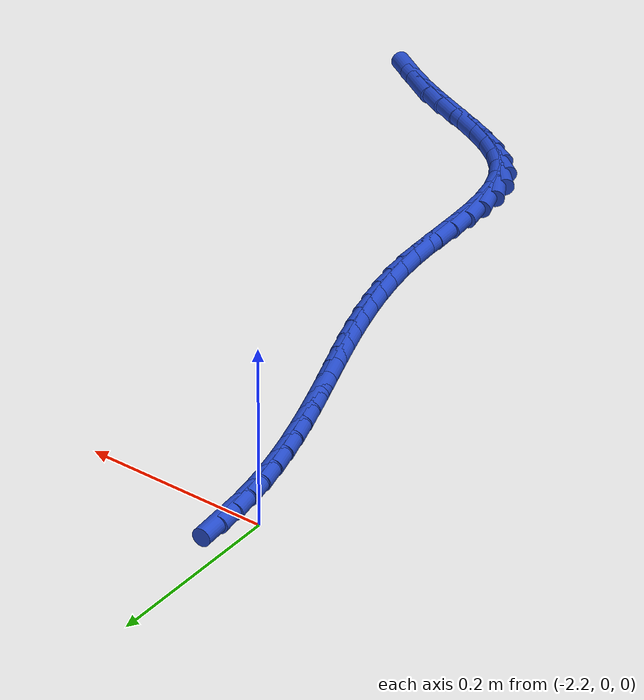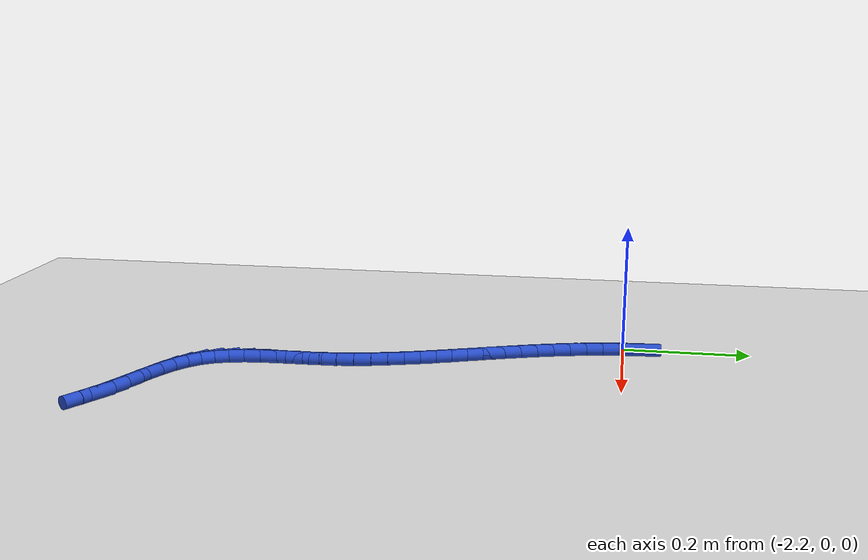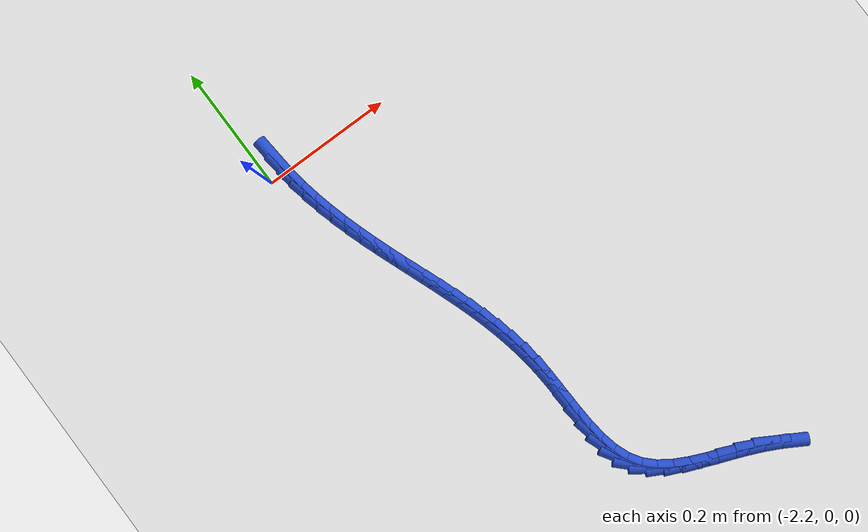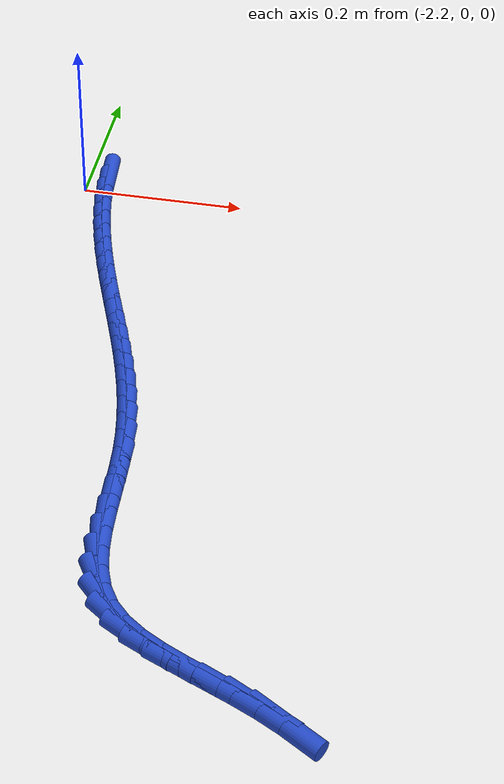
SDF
<sdf version="1.6">
 <world name="default">
  <model name="ground_plane">
   <static>1</static>
   <link name="link">
    <collision name="collision">
     <geometry><plane><normal>0 0 1</normal><size>100 100</size></plane></geometry>
     <surface><friction><ode><mu>100</mu><mu2>50</mu2></ode></friction></surface>
    </collision>
    <visual name="visual">
     <cast_shadows>0</cast_shadows>
     <geometry><plane><normal>0 0 1</normal><size>100 100</size></plane></geometry>
     <material>
      <script><uri>file://media/materials/scripts/gazebo.material</uri><name>Gazebo/WhiteGlow</name></script>
     </material>
    </visual>
   </link>
  </model>
  <model name="line">
   <link name="link_148">
    <pose>-2.1739696647535744 0.019735825481456498 0.01 0 1.57 -1.491341415496262</pose>
    <collision name="collision">
     <geometry><cylinder><radius>0.01</radius><length>0.08</length></cylinder></geometry>
    </collision>
    <visual name="visual">
     <material>
      <script><name>Gazebo/Blue</name><uri>file://media/materials/scripts/gazebo.material</uri></script>
     </material>
     <geometry><cylinder><radius>0.01</radius><length>0.08</length></cylinder></geometry>
    </visual>
   </link>
   <link name="link_149">
    <pose>-2.171937251805955 -0.005789773664674066 0.01 0 1.57 -1.4337114478366433</pose>
    <collision name="collision">
     <geometry><cylinder><radius>0.01</radius><length>0.08</length></cylinder></geometry>
    </collision>
    <visual name="visual">
     <material>
      <script><name>Gazebo/Blue</name><uri>file://media/materials/scripts/gazebo.material</uri></script>
     </material>
     <geometry><cylinder><radius>0.01</radius><length>0.08</length></cylinder></geometry>
    </visual>
   </link>
   <link name="link_150">
    <pose>-2.1683809445292113 -0.031569438954732465 0.01 0 1.57 -1.3844887598798437</pose>
    <collision name="collision">
     <geometry><cylinder><radius>0.01</radius><length>0.08</length></cylinder></geometry>
    </collision>
    <visual name="visual">
     <material>
      <script><name>Gazebo/Blue</name><uri>file://media/materials/scripts/gazebo.material</uri></script>
     </material>
     <geometry><cylinder><radius>0.01</radius><length>0.08</length></cylinder></geometry>
    </visual>
   </link>
   <link name="link_151">
    <pose>-2.1634989279393753 -0.05746961984973732 0.01 0 1.57 -1.3426927872897205</pose>
    <collision name="collision">
     <geometry><cylinder><radius>0.01</radius><length>0.08</length></cylinder></geometry>
    </collision>
    <visual name="visual">
     <material>
      <script><name>Gazebo/Blue</name><uri>file://media/materials/scripts/gazebo.material</uri></script>
     </material>
     <geometry><cylinder><radius>0.01</radius><length>0.08</length></cylinder></geometry>
    </visual>
   </link>
   <link name="link_152">
    <pose>-2.1574893870524763 -0.08335676581070649 0.01 0 1.57 -1.3074854172228525</pose>
    <collision name="collision">
     <geometry><cylinder><radius>0.01</radius><length>0.08</length></cylinder></geometry>
    </collision>
    <visual name="visual">
     <material>
      <script><name>Gazebo/Blue</name><uri>file://media/materials/scripts/gazebo.material</uri></script>
     </material>
     <geometry><cylinder><radius>0.01</radius><length>0.08</length></cylinder></geometry>
    </visual>
   </link>
   <link name="link_153">
    <pose>-2.1505505068845476 -0.10909732629866027 0.01 0 1.57 -1.2781902013723185</pose>
    <collision name="collision">
     <geometry><cylinder><radius>0.01</radius><length>0.08</length></cylinder></geometry>
    </collision>
    <visual name="visual">
     <material>
      <script><name>Gazebo/Blue</name><uri>file://media/materials/scripts/gazebo.material</uri></script>
     </material>
     <geometry><cylinder><radius>0.01</radius><length>0.08</length></cylinder></geometry>
    </visual>
   </link>
   <link name="link_154">
    <pose>-2.1428804724516195 -0.13455775077461646 0.01 0 1.57 -1.2542978237094242</pose>
    <collision name="collision">
     <geometry><cylinder><radius>0.01</radius><length>0.08</length></cylinder></geometry>
    </collision>
    <visual name="visual">
     <material>
      <script><name>Gazebo/Blue</name><uri>file://media/materials/scripts/gazebo.material</uri></script>
     </material>
     <geometry><cylinder><radius>0.01</radius><length>0.08</length></cylinder></geometry>
    </visual>
   </link>
   <link name="link_155">
    <pose>-2.134677468769723 -0.1596044886995937 0.01 0 1.57 -1.2355491228964086</pose>
    <collision name="collision">
     <geometry><cylinder><radius>0.01</radius><length>0.08</length></cylinder></geometry>
    </collision>
    <visual name="visual">
     <material>
      <script><name>Gazebo/Blue</name><uri>file://media/materials/scripts/gazebo.material</uri></script>
     </material>
     <geometry><cylinder><radius>0.01</radius><length>0.08</length></cylinder></geometry>
    </visual>
   </link>
   <link name="link_156">
    <pose>-2.1261346581488008 -0.18412473061904377 0.01 0 1.57 -1.222530887924868</pose>
    <collision name="collision">
     <geometry><cylinder><radius>0.01</radius><length>0.08</length></cylinder></geometry>
    </collision>
    <visual name="visual">
     <material>
      <script><name>Gazebo/Blue</name><uri>file://media/materials/scripts/gazebo.material</uri></script>
     </material>
     <geometry><cylinder><radius>0.01</radius><length>0.08</length></cylinder></geometry>
    </visual>
   </link>
   <link name="link_157">
    <pose>-2.117406854780625 -0.20816402425533853 0.01 0 1.57 -1.2158515488829487</pose>
    <collision name="collision">
     <geometry><cylinder><radius>0.01</radius><length>0.08</length></cylinder></geometry>
    </collision>
    <visual name="visual">
     <material>
      <script><name>Gazebo/Blue</name><uri>file://media/materials/scripts/gazebo.material</uri></script>
     </material>
     <geometry><cylinder><radius>0.01</radius><length>0.08</length></cylinder></geometry>
    </visual>
   </link>
   <link name="link_158">
    <pose>-2.1086311928908703 -0.23184092611596377 0.01 0 1.57 -1.2158121602700012</pose>
    <collision name="collision">
     <geometry><cylinder><radius>0.01</radius><length>0.08</length></cylinder></geometry>
    </collision>
    <visual name="visual">
     <material>
      <script><name>Gazebo/Blue</name><uri>file://media/materials/scripts/gazebo.material</uri></script>
     </material>
     <geometry><cylinder><radius>0.01</radius><length>0.08</length></cylinder></geometry>
    </visual>
   </link>
   <link name="link_159">
    <pose>-2.099944712200441 -0.25527438296247845 0.01 0 1.57 -1.2226213028529598</pose>
    <collision name="collision">
     <geometry><cylinder><radius>0.01</radius><length>0.08</length></cylinder></geometry>
    </collision>
    <visual name="visual">
     <material>
      <script><name>Gazebo/Blue</name><uri>file://media/materials/scripts/gazebo.material</uri></script>
     </material>
     <geometry><cylinder><radius>0.01</radius><length>0.08</length></cylinder></geometry>
    </visual>
   </link>
   <link name="link_160">
    <pose>-2.091484452430237 -0.27858334155644127 0.01 0 1.57 -1.236386206789248</pose>
    <collision name="collision">
     <geometry><cylinder><radius>0.01</radius><length>0.08</length></cylinder></geometry>
    </collision>
    <visual name="visual">
     <material>
      <script><name>Gazebo/Blue</name><uri>file://media/materials/scripts/gazebo.material</uri></script>
     </material>
     <geometry><cylinder><radius>0.01</radius><length>0.08</length></cylinder></geometry>
    </visual>
   </link>
   <link name="link_161">
    <pose>-2.08338745330116 -0.30188674865941095 0.01 0 1.57 -1.2570960721082616</pose>
    <collision name="collision">
     <geometry><cylinder><radius>0.01</radius><length>0.08</length></cylinder></geometry>
    </collision>
    <visual name="visual">
     <material>
      <script><name>Gazebo/Blue</name><uri>file://media/materials/scripts/gazebo.material</uri></script>
     </material>
     <geometry><cylinder><radius>0.01</radius><length>0.08</length></cylinder></geometry>
    </visual>
   </link>
   <link name="link_162">
    <pose>-2.075790754534112 -0.32530355103294634 0.01 0 1.57 -1.2845998051264071</pose>
    <collision name="collision">
     <geometry><cylinder><radius>0.01</radius><length>0.08</length></cylinder></geometry>
    </collision>
    <visual name="visual">
     <material>
      <script><name>Gazebo/Blue</name><uri>file://media/materials/scripts/gazebo.material</uri></script>
     </material>
     <geometry><cylinder><radius>0.01</radius><length>0.08</length></cylinder></geometry>
    </visual>
   </link>
   <link name="link_163">
    <pose>-2.0688313958499944 -0.34895269543860635 0.01 0 1.57 -1.3185812099096323</pose>
    <collision name="collision">
     <geometry><cylinder><radius>0.01</radius><length>0.08</length></cylinder></geometry>
    </collision>
    <visual name="visual">
     <material>
      <script><name>Gazebo/Blue</name><uri>file://media/materials/scripts/gazebo.material</uri></script>
     </material>
     <geometry><cylinder><radius>0.01</radius><length>0.08</length></cylinder></geometry>
    </visual>
   </link>
   <link name="link_164">
    <pose>-2.062646416969709 -0.37295312863794955 0.01 0 1.57 -1.3585372211960436</pose>
    <collision name="collision">
     <geometry><cylinder><radius>0.01</radius><length>0.08</length></cylinder></geometry>
    </collision>
    <visual name="visual">
     <material>
      <script><name>Gazebo/Blue</name><uri>file://media/materials/scripts/gazebo.material</uri></script>
     </material>
     <geometry><cylinder><radius>0.01</radius><length>0.08</length></cylinder></geometry>
    </visual>
   </link>
   <link name="link_165">
    <pose>-2.0573728576141574 -0.397423797392535 0.01 0 1.57 -1.4037668023534666</pose>
    <collision name="collision">
     <geometry><cylinder><radius>0.01</radius><length>0.08</length></cylinder></geometry>
    </collision>
    <visual name="visual">
     <material>
      <script><name>Gazebo/Blue</name><uri>file://media/materials/scripts/gazebo.material</uri></script>
     </material>
     <geometry><cylinder><radius>0.01</radius><length>0.08</length></cylinder></geometry>
    </visual>
   </link>
   <link name="link_166">
    <pose>-2.0531477575042416 -0.4224836484639213 0.01 0 1.57 -1.453378533908615</pose>
    <collision name="collision">
     <geometry><cylinder><radius>0.01</radius><length>0.08</length></cylinder></geometry>
    </collision>
    <visual name="visual">
     <material>
      <script><name>Gazebo/Blue</name><uri>file://media/materials/scripts/gazebo.material</uri></script>
     </material>
     <geometry><cylinder><radius>0.01</radius><length>0.08</length></cylinder></geometry>
    </visual>
   </link>
   <link name="link_167">
    <pose>-2.050108156360863 -0.44825162861366735 0.01 0 1.57 -1.5050844035503885</pose>
    <collision name="collision">
     <geometry><cylinder><radius>0.01</radius><length>0.08</length></cylinder></geometry>
    </collision>
    <visual name="visual">
     <material>
      <script><name>Gazebo/Blue</name><uri>file://media/materials/scripts/gazebo.material</uri></script>
     </material>
     <geometry><cylinder><radius>0.01</radius><length>0.08</length></cylinder></geometry>
    </visual>
   </link>
   <link name="link_168">
    <pose>-2.04835952585044 -0.47482386701500545 0.01 0 1.57 -1.5397420020649124</pose>
    <collision name="collision">
     <geometry><cylinder><radius>0.01</radius><length>0.08</length></cylinder></geometry>
    </collision>
    <visual name="visual">
     <material>
      <script><name>Gazebo/Blue</name><uri>file://media/materials/scripts/gazebo.material</uri></script>
     </material>
     <geometry><cylinder><radius>0.01</radius><length>0.08</length></cylinder></geometry>
    </visual>
   </link>
   <link name="link_169">
    <pose>-2.047517114859091 -0.5019421567323292 0.01 0 1.57 -1.544714521039715</pose>
    <collision name="collision">
     <geometry><cylinder><radius>0.01</radius><length>0.08</length></cylinder></geometry>
    </collision>
    <visual name="visual">
     <material>
      <script><name>Gazebo/Blue</name><uri>file://media/materials/scripts/gazebo.material</uri></script>
     </material>
     <geometry><cylinder><radius>0.01</radius><length>0.08</length></cylinder></geometry>
    </visual>
   </link>
   <link name="link_170">
    <pose>-2.0468094435644826 -0.5290687608872501 0.01 0 1.57 -1.5198837618183658</pose>
    <collision name="collision">
     <geometry><cylinder><radius>0.01</radius><length>0.08</length></cylinder></geometry>
    </collision>
    <visual name="visual">
     <material>
      <script><name>Gazebo/Blue</name><uri>file://media/materials/scripts/gazebo.material</uri></script>
     </material>
     <geometry><cylinder><radius>0.01</radius><length>0.08</length></cylinder></geometry>
    </visual>
   </link>
   <link name="link_171">
    <pose>-2.0454545284674452 -0.5556583504776983 0.01 0 1.57 -1.4620756888775177</pose>
    <collision name="collision">
     <geometry><cylinder><radius>0.01</radius><length>0.08</length></cylinder></geometry>
    </collision>
    <visual name="visual">
     <material>
      <script><name>Gazebo/Blue</name><uri>file://media/materials/scripts/gazebo.material</uri></script>
     </material>
     <geometry><cylinder><radius>0.01</radius><length>0.08</length></cylinder></geometry>
    </visual>
   </link>
   <link name="link_172">
    <pose>-2.04267038606881 -0.5811655965016049 0.01 0 1.57 -1.3645806392446163</pose>
    <collision name="collision">
     <geometry><cylinder><radius>0.01</radius><length>0.08</length></cylinder></geometry>
    </collision>
    <visual name="visual">
     <material>
      <script><name>Gazebo/Blue</name><uri>file://media/materials/scripts/gazebo.material</uri></script>
     </material>
     <geometry><cylinder><radius>0.01</radius><length>0.08</length></cylinder></geometry>
    </visual>
   </link>
   <link name="link_173">
    <pose>-2.037675032869408 -0.6050451699569009 0.01 0 1.57 -1.21815525582553</pose>
    <collision name="collision">
     <geometry><cylinder><radius>0.01</radius><length>0.08</length></cylinder></geometry>
    </collision>
    <visual name="visual">
     <material>
      <script><name>Gazebo/Blue</name><uri>file://media/materials/scripts/gazebo.material</uri></script>
     </material>
     <geometry><cylinder><radius>0.01</radius><length>0.08</length></cylinder></geometry>
    </visual>
   </link>
   <link name="link_174">
    <pose>-2.029686485370071 -0.6267517418415177 0.01 0 1.57 -1.0162410245712583</pose>
    <collision name="collision">
     <geometry><cylinder><radius>0.01</radius><length>0.08</length></cylinder></geometry>
    </collision>
    <visual name="visual">
     <material>
      <script><name>Gazebo/Blue</name><uri>file://media/materials/scripts/gazebo.material</uri></script>
     </material>
     <geometry><cylinder><radius>0.01</radius><length>0.08</length></cylinder></geometry>
    </visual>
   </link>
   <link name="link_175">
    <pose>-2.01792453764014 -0.6457412950129214 0.01 0 1.57 -0.7907629568985007</pose>
    <collision name="collision">
     <geometry><cylinder><radius>0.01</radius><length>0.08</length></cylinder></geometry>
    </collision>
    <visual name="visual">
     <material>
      <script><name>Gazebo/Blue</name><uri>file://media/materials/scripts/gazebo.material</uri></script>
     </material>
     <geometry><cylinder><radius>0.01</radius><length>0.08</length></cylinder></geometry>
    </visual>
   </link>
   <link name="link_176">
    <pose>-2.0020453078832268 -0.6617918229698896 0.01 0 1.57 -0.6140383205601103</pose>
    <collision name="collision">
     <geometry><cylinder><radius>0.01</radius><length>0.08</length></cylinder></geometry>
    </collision>
    <visual name="visual">
     <material>
      <script><name>Gazebo/Blue</name><uri>file://media/materials/scripts/gazebo.material</uri></script>
     </material>
     <geometry><cylinder><radius>0.01</radius><length>0.08</length></cylinder></geometry>
    </visual>
   </link>
   <link name="link_177">
    <pose>-1.9827093817854744 -0.6754226241100612 0.01 0 1.57 -0.49369124176374385</pose>
    <collision name="collision">
     <geometry><cylinder><radius>0.01</radius><length>0.08</length></cylinder></geometry>
    </collision>
    <visual name="visual">
     <material>
      <script><name>Gazebo/Blue</name><uri>file://media/materials/scripts/gazebo.material</uri></script>
     </material>
     <geometry><cylinder><radius>0.01</radius><length>0.08</length></cylinder></geometry>
    </visual>
   </link>
   <link name="link_178">
    <pose>-1.9607181892647811 -0.6872569409813754 0.01 0 1.57 -0.42043836374865656</pose>
    <collision name="collision">
     <geometry><cylinder><radius>0.01</radius><length>0.08</length></cylinder></geometry>
    </collision>
    <visual name="visual">
     <material>
      <script><name>Gazebo/Blue</name><uri>file://media/materials/scripts/gazebo.material</uri></script>
     </material>
     <geometry><cylinder><radius>0.01</radius><length>0.08</length></cylinder></geometry>
    </visual>
   </link>
   <link name="link_179">
    <pose>-1.9368731602390452 -0.6979180161317714 0.01 0 1.57 -0.3857617511765276</pose>
    <collision name="collision">
     <geometry><cylinder><radius>0.01</radius><length>0.08</length></cylinder></geometry>
    </collision>
    <visual name="visual">
     <material>
      <script><name>Gazebo/Blue</name><uri>file://media/materials/scripts/gazebo.material</uri></script>
     </material>
     <geometry><cylinder><radius>0.01</radius><length>0.08</length></cylinder></geometry>
    </visual>
   </link>
   <link name="link_180">
    <pose>-1.911975724626164 -0.7080290921091886 0.01 0 1.57 -0.38478237051549735</pose>
    <collision name="collision">
     <geometry><cylinder><radius>0.01</radius><length>0.08</length></cylinder></geometry>
    </collision>
    <visual name="visual">
     <material>
      <script><name>Gazebo/Blue</name><uri>file://media/materials/scripts/gazebo.material</uri></script>
     </material>
     <geometry><cylinder><radius>0.01</radius><length>0.08</length></cylinder></geometry>
    </visual>
   </link>
   <link name="link_181">
    <pose>-1.886827312344035 -0.7182134114615659 0.01 0 1.57 -0.4164608806928612</pose>
    <collision name="collision">
     <geometry><cylinder><radius>0.01</radius><length>0.08</length></cylinder></geometry>
    </collision>
    <visual name="visual">
     <material>
      <script><name>Gazebo/Blue</name><uri>file://media/materials/scripts/gazebo.material</uri></script>
     </material>
     <geometry><cylinder><radius>0.01</radius><length>0.08</length></cylinder></geometry>
    </visual>
   </link>
   <link name="link_182">
    <pose>-1.8622291243686213 -0.7290940340066601 0.01 0 1.57 -0.47422267286544495</pose>
    <collision name="collision">
     <geometry><cylinder><radius>0.01</radius><length>0.08</length></cylinder></geometry>
    </collision>
    <visual name="visual">
     <material>
      <script><name>Gazebo/Blue</name><uri>file://media/materials/scripts/gazebo.material</uri></script>
     </material>
     <geometry><cylinder><radius>0.01</radius><length>0.08</length></cylinder></geometry>
    </visual>
   </link>
   <link name="link_183">
    <pose>-1.8387782622989386 -0.741131117486497 0.01 0 1.57 -0.5344601728823408</pose>
    <collision name="collision">
     <geometry><cylinder><radius>0.01</radius><length>0.08</length></cylinder></geometry>
    </collision>
    <visual name="visual">
     <material>
      <script><name>Gazebo/Blue</name><uri>file://media/materials/scripts/gazebo.material</uri></script>
     </material>
     <geometry><cylinder><radius>0.01</radius><length>0.08</length></cylinder></geometry>
    </visual>
   </link>
  </model>
 </world>
</sdf>
